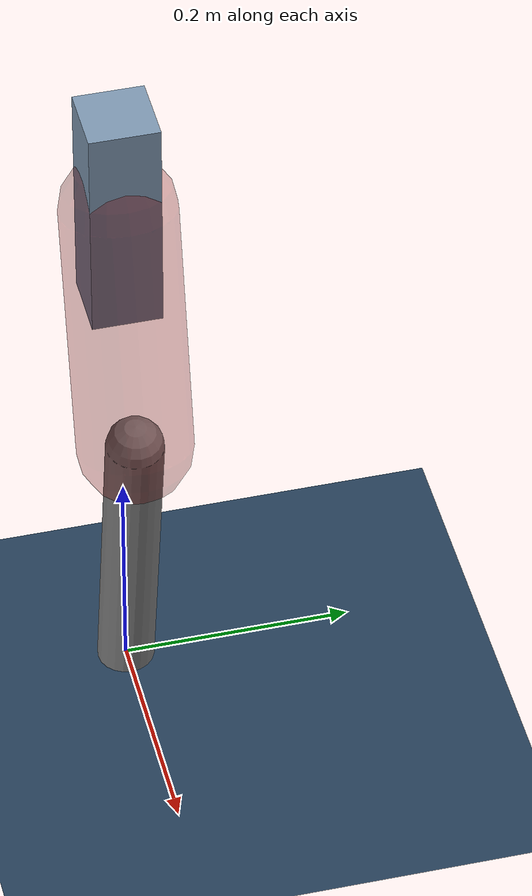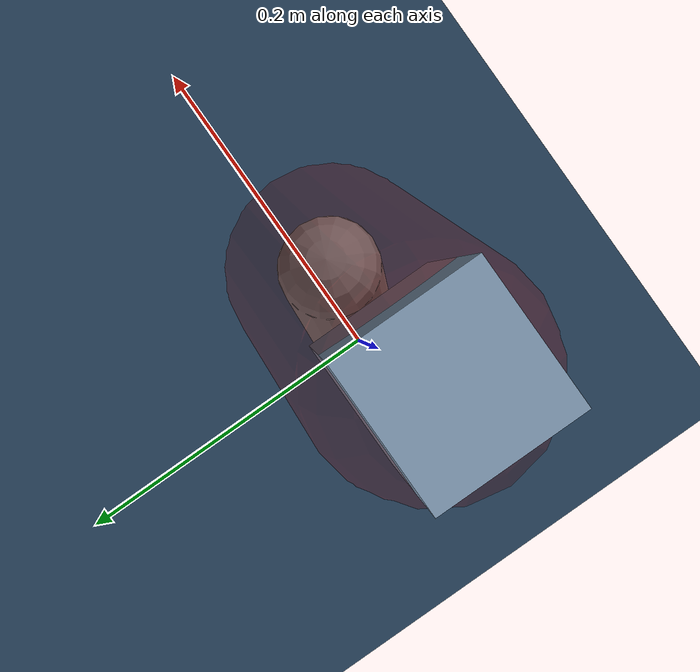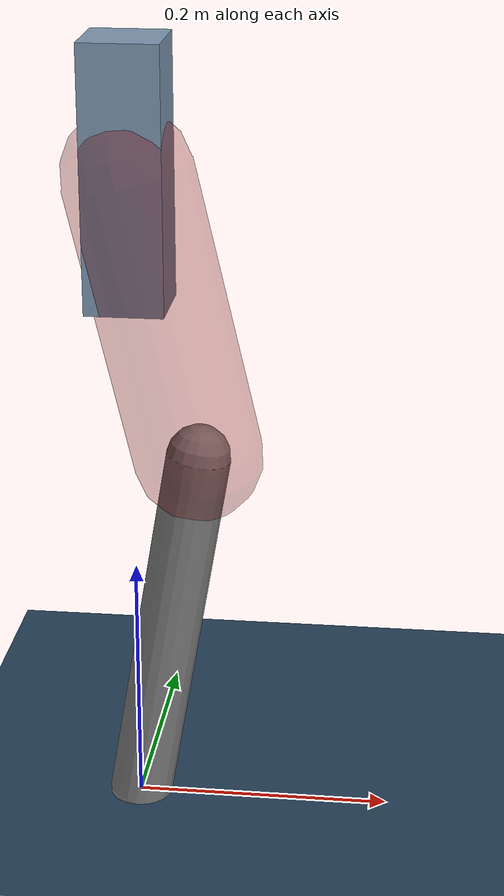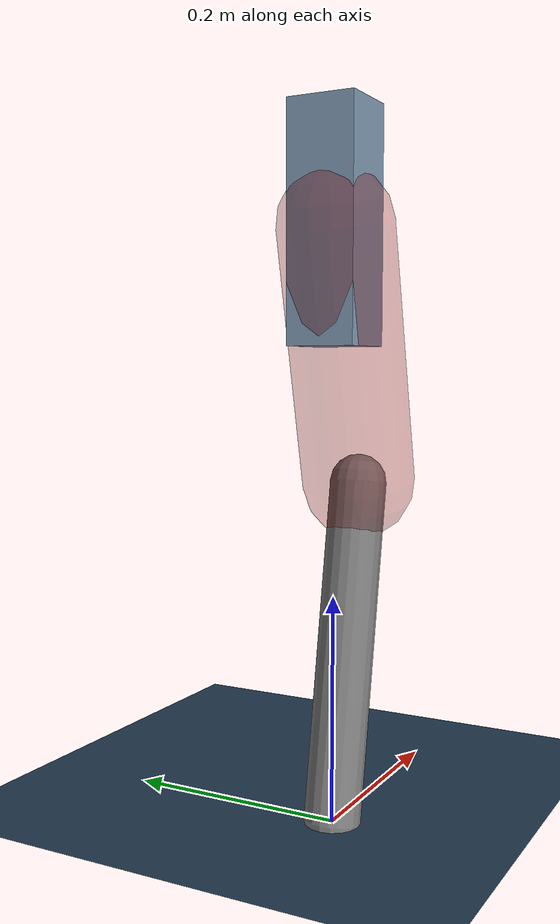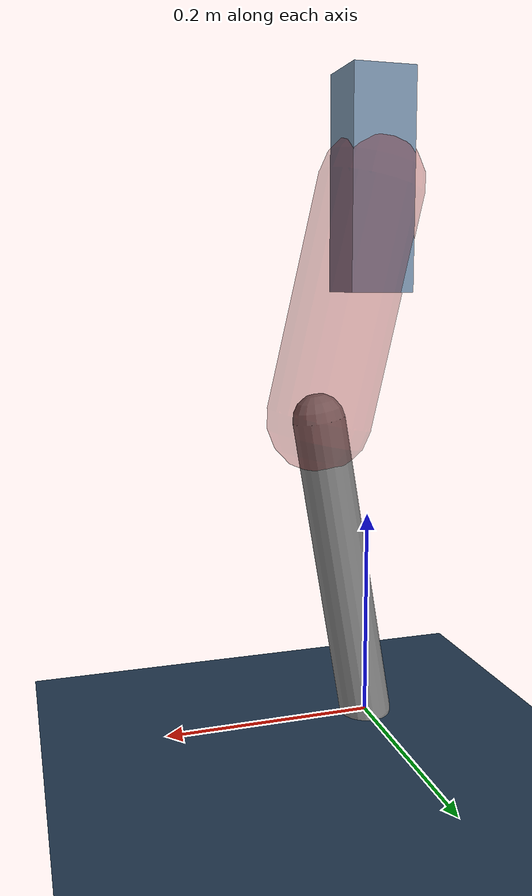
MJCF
<mujoco model="Hopper2D">
	<compiler inertiafromgeom="true" angle="radian" />
	<option timestep="0.001" integrator="implicit" cone="elliptic" solver="Newton" tolerance="1e-10" />

	<default>
		<geom contype="1" conaffinity="1" condim="3" friction="2 0.005 0.0001" solref="0.005 1" />
		<joint limited="true" damping="0.1" />
	</default>

	<asset>
		<texture name="skybox" type="skybox" builtin="gradient" rgb1=".4 .6 .8" rgb2="0 0 0" width="800" height="800" />
		<texture name="grid" type="2d" builtin="checker" rgb1=".1 .2 .3" rgb2=".2 .3 .4" width="300" height="300" mark="edge" markrgb=".2 .3 .4" />
		<material name="ground" texture="grid" texrepeat="1 1" texuniform="true" reflectance="0.1" />
		<material name="leg" rgba="0.5 0.6 0.7 1" />
	</asset>

	<worldbody>

		<geom name="floor" type="plane" size="5 5 0.25" material="ground" />

		<light directional="false" diffuse="0.8 0.8 0.8" specular="0.3 0.3 0.3" pos="0 0 2" dir="0 0 -1" />
		<light mode="targetbodycom" target="base" directional="false" diffuse="0.8 0.8 0.8" specular="0.3 0.3 0.3" pos="0 0 2" dir="0 0 -1" />

		<camera name="fixed" pos="0 -2 1" xyaxes="1 0 0 0 0 1" />
		<camera name="tracking" mode="trackcom" pos="0 -3 1" />

		<body name="root" pos="0 0 0.51411532834688">
			<joint name="slide_x" type="slide" axis="1 0 0" range="-100 100" />
			<joint name="slide_z" type="slide" axis="0 0 1" range="0 10" />

			<body name="base" pos="0 0 0">
				<geom name="torso" type="box" size="0.03 0.03 0.1" mass="1.488" material="leg" />

				<body name="link1" pos="0 0 0" euler="0 1.3443980633084478 0">
					<joint type="hinge" axis="0 -1 0" pos="0 0 0" name="hinge1" limited="true" range="-3.14 3.14" stiffness="0" damping="0.1" />
					<geom name="thigh" type="capsule" fromto="0 0 0 0.22453463928932169 0 0" size="0.05" rgba="0.5 0 0 0.3" mass="0.7911365982233042" />

					<body name="link2" pos="0.22453463928932169 0 0" euler="0 0.3954410156155432 0">
						<joint type="hinge" axis="0 -1 0" pos="0 0 0" name="hinge2" limited="true" range="-3.14 3.14" stiffness="0" damping="0.1" />
						<geom name="shank" type="capsule" fromto="0 0 0 0.2995806890575583 0 0" size="0.025" mass="0.48306455124604664" />

					</body>
				</body>
			</body>
		</body>
	</worldbody>

	<actuator>
		<motor name="torque1" joint="hinge1" ctrlrange="-11.213800039467348 11.213800039467348" ctrllimited="true" gear="1" />
		<motor name="torque2" joint="hinge2" ctrlrange="-82.94741068617392 82.94741068617392" ctrllimited="true" gear="1" />
	</actuator>
</mujoco>
